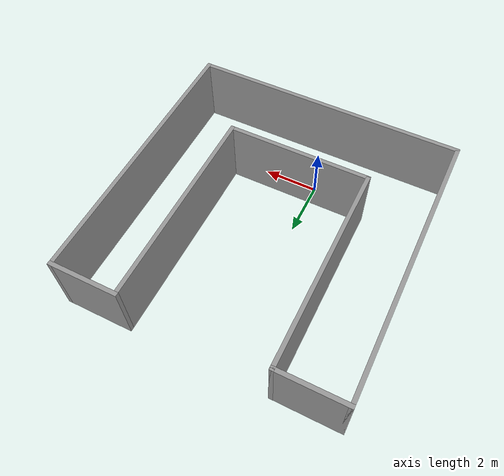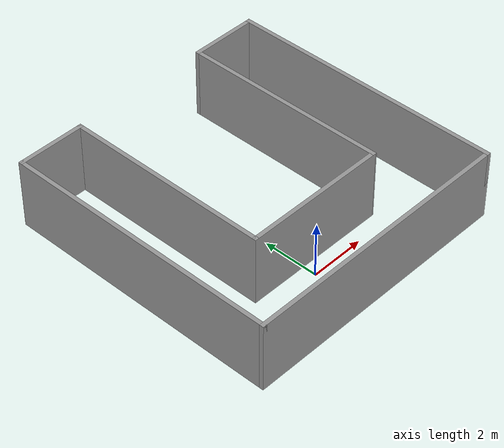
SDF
<?xml version='1.0'?>
<sdf version='1.6'>
  <model name='MyWorld'>
    <pose frame=''>0.559374 2.975 0 0 -0 0</pose>
    <link name='Wall_0'>
      <collision name='Wall_0_Collision'>
        <geometry>
          <box>
            <size>10 0.15 2.5</size>
          </box>
        </geometry>
        <pose frame=''>0 0 1.25 0 -0 0</pose>
      </collision>
      <visual name='Wall_0_Visual'>
        <pose frame=''>0 0 1.25 0 -0 0</pose>
        <geometry>
          <box>
            <size>10 0.15 2.5</size>
          </box>
        </geometry>
        <material>
          <script>
            <uri>file://media/materials/scripts/gazebo.material</uri>
            <name>Gazebo/Grey</name>
          </script>
          <ambient>1 1 1 1</ambient>
        </material>
        <meta>
          <layer>0</layer>
        </meta>
      </visual>
      <pose frame=''>0 -4.925 0 0 -0 0</pose>
    </link>
    <link name='Wall_11'>
      <collision name='Wall_11_Collision'>
        <geometry>
          <box>
            <size>5.25 0.15 2.5</size>
          </box>
        </geometry>
        <pose frame=''>0 0 1.25 0 -0 0</pose>
      </collision>
      <visual name='Wall_11_Visual'>
        <pose frame=''>0 0 1.25 0 -0 0</pose>
        <geometry>
          <box>
            <size>5.25 0.15 2.5</size>
          </box>
        </geometry>
        <material>
          <script>
            <uri>file://media/materials/scripts/gazebo.material</uri>
            <name>Gazebo/Grey</name>
          </script>
          <ambient>1 1 1 1</ambient>
        </material>
        <meta>
          <layer>0</layer>
        </meta>
      </visual>
      <pose frame=''>-0.018939 -2.4263 0 0 -0 0</pose>
    </link>
    <link name='Wall_13'>
      <collision name='Wall_13_Collision'>
        <geometry>
          <box>
            <size>10 0.15 2.5</size>
          </box>
        </geometry>
        <pose frame=''>0 0 1.25 0 -0 0</pose>
      </collision>
      <visual name='Wall_13_Visual'>
        <pose frame=''>0 0 1.25 0 -0 0</pose>
        <geometry>
          <box>
            <size>10 0.15 2.5</size>
          </box>
        </geometry>
        <material>
          <script>
            <uri>file://media/materials/scripts/gazebo.material</uri>
            <name>Gazebo/Grey</name>
          </script>
          <ambient>1 1 1 1</ambient>
        </material>
        <meta>
          <layer>0</layer>
        </meta>
      </visual>
      <pose frame=''>-4.925 0 0 0 -0 1.5708</pose>
    </link>
    <link name='Wall_15'>
      <collision name='Wall_15_Collision'>
        <geometry>
          <box>
            <size>2.5 0.15 2.5</size>
          </box>
        </geometry>
        <pose frame=''>0 0 1.25 0 -0 0</pose>
      </collision>
      <visual name='Wall_15_Visual'>
        <pose frame=''>0 0 1.25 0 -0 0</pose>
        <geometry>
          <box>
            <size>2.5 0.15 2.5</size>
          </box>
        </geometry>
        <material>
          <script>
            <uri>file://media/materials/scripts/gazebo.material</uri>
            <name>Gazebo/Grey</name>
          </script>
          <ambient>1 1 1 1</ambient>
        </material>
        <meta>
          <layer>0</layer>
        </meta>
      </visual>
      <pose frame=''>-3.75 4.925 0 0 -0 0</pose>
    </link>
    <link name='Wall_17'>
      <collision name='Wall_17_Collision'>
        <geometry>
          <box>
            <size>7.5 0.15 2.5</size>
          </box>
        </geometry>
        <pose frame=''>0 0 1.25 0 -0 0</pose>
      </collision>
      <visual name='Wall_17_Visual'>
        <pose frame=''>0 0 1.25 0 -0 0</pose>
        <geometry>
          <box>
            <size>7.5 0.15 2.5</size>
          </box>
        </geometry>
        <material>
          <script>
            <uri>file://media/materials/scripts/gazebo.material</uri>
            <name>Gazebo/Grey</name>
          </script>
          <ambient>1 1 1 1</ambient>
        </material>
        <meta>
          <layer>0</layer>
        </meta>
      </visual>
      <pose frame=''>-2.575 1.25 0 0 0 -1.5708</pose>
    </link>
    <link name='Wall_19'>
      <collision name='Wall_19_Collision'>
        <geometry>
          <box>
            <size>10 0.15 2.5</size>
          </box>
        </geometry>
        <pose frame=''>0 0 1.25 0 -0 0</pose>
      </collision>
      <visual name='Wall_19_Visual'>
        <pose frame=''>0 0 1.25 0 -0 0</pose>
        <geometry>
          <box>
            <size>10 0.15 2.5</size>
          </box>
        </geometry>
        <material>
          <script>
            <uri>file://media/materials/scripts/gazebo.material</uri>
            <name>Gazebo/Grey</name>
          </script>
          <ambient>1 1 1 1</ambient>
        </material>
        <meta>
          <layer>0</layer>
        </meta>
      </visual>
      <pose frame=''>4.925 0 0 0 -0 1.5708</pose>
    </link>
    <link name='Wall_21'>
      <collision name='Wall_21_Collision'>
        <geometry>
          <box>
            <size>2.5 0.15 2.5</size>
          </box>
        </geometry>
        <pose frame=''>0 0 1.25 0 -0 0</pose>
      </collision>
      <visual name='Wall_21_Visual'>
        <pose frame=''>0 0 1.25 0 -0 0</pose>
        <geometry>
          <box>
            <size>2.5 0.15 2.5</size>
          </box>
        </geometry>
        <material>
          <script>
            <uri>file://media/materials/scripts/gazebo.material</uri>
            <name>Gazebo/Grey</name>
          </script>
          <ambient>1 1 1 1</ambient>
        </material>
        <meta>
          <layer>0</layer>
        </meta>
      </visual>
      <pose frame=''>3.75 4.925 0 0 -0 3.14159</pose>
    </link>
    <link name='Wall_23'>
      <collision name='Wall_23_Collision'>
        <geometry>
          <box>
            <size>7.5 0.15 2.5</size>
          </box>
        </geometry>
        <pose frame=''>0 0 1.25 0 -0 0</pose>
      </collision>
      <visual name='Wall_23_Visual'>
        <pose frame=''>0 0 1.25 0 -0 0</pose>
        <geometry>
          <box>
            <size>7.5 0.15 2.5</size>
          </box>
        </geometry>
        <material>
          <script>
            <uri>file://media/materials/scripts/gazebo.material</uri>
            <name>Gazebo/Grey</name>
          </script>
          <ambient>1 1 1 1</ambient>
        </material>
        <meta>
          <layer>0</layer>
        </meta>
      </visual>
      <pose frame=''>2.575 1.25 0 0 0 -1.5708</pose>
    </link>
    <static>1</static>
  </model>
</sdf>
